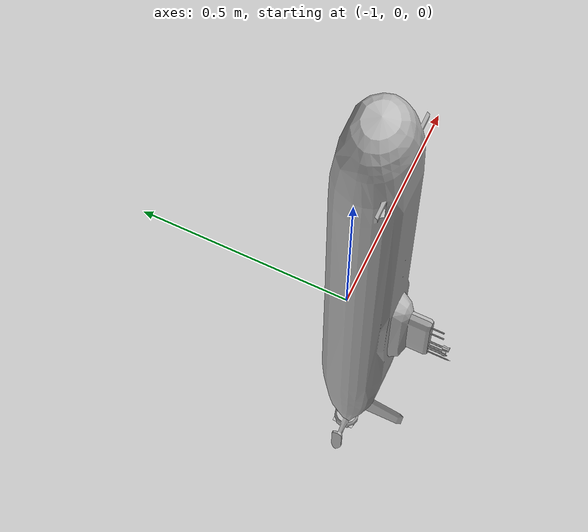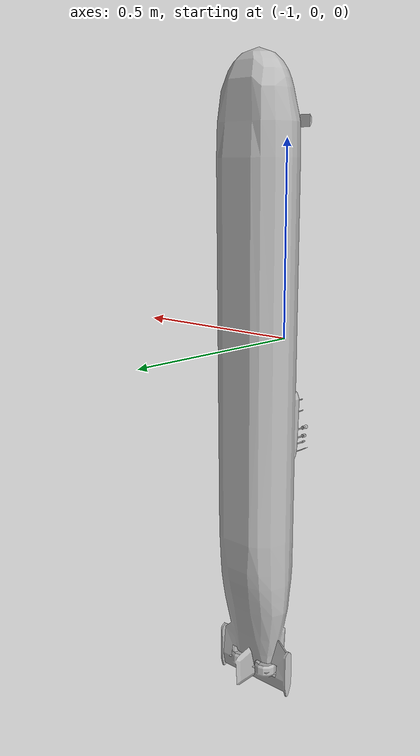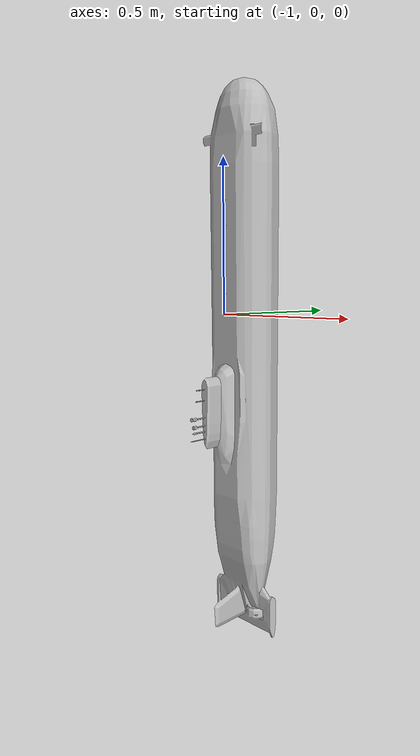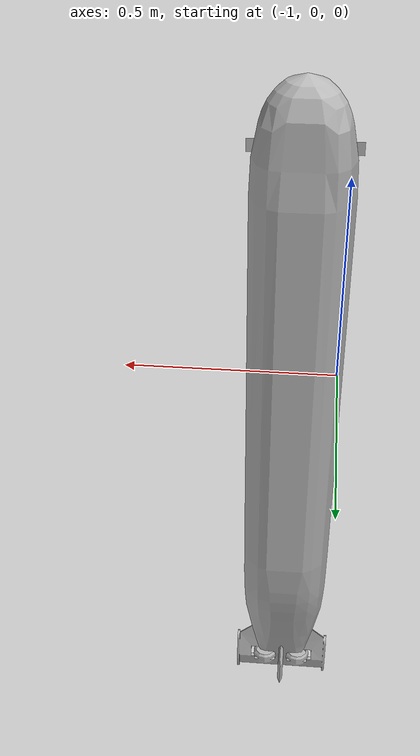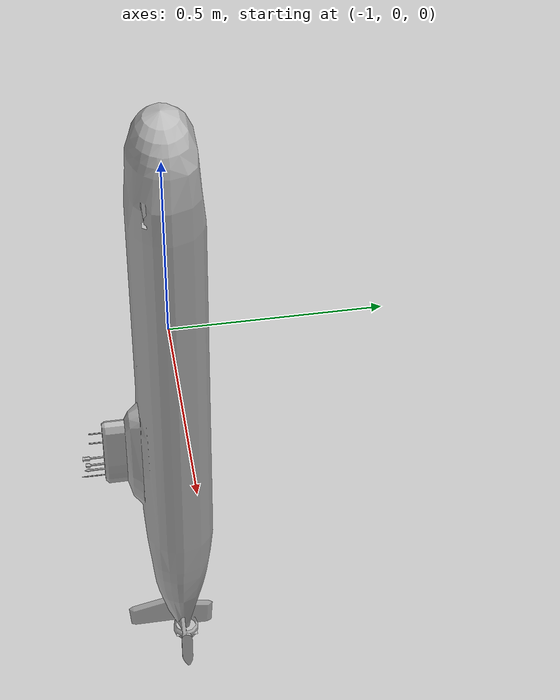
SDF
<?xml version='1.0' ?>
<sdf version="1.6">
    <model name="CubeSoft">
        <static>true</static>
        <link name="link">
            <pose>0 0 0 1.57 3.14159 0</pose>
            <collision name="collision">
                <geometry>
                    <mesh>
                        <uri>meshes/untitled.dae</uri>
                        <scale>0.01 0.01 0.01</scale>
                    </mesh>
                </geometry>
            </collision>
            <visual name="visual">
                <geometry>
                    <mesh>
                        <uri>meshes/untitled.dae</uri>
                        <scale>0.01 0.01 0.01</scale>
                    </mesh>
                </geometry>
            </visual>
        </link>
    </model>
</sdf>
